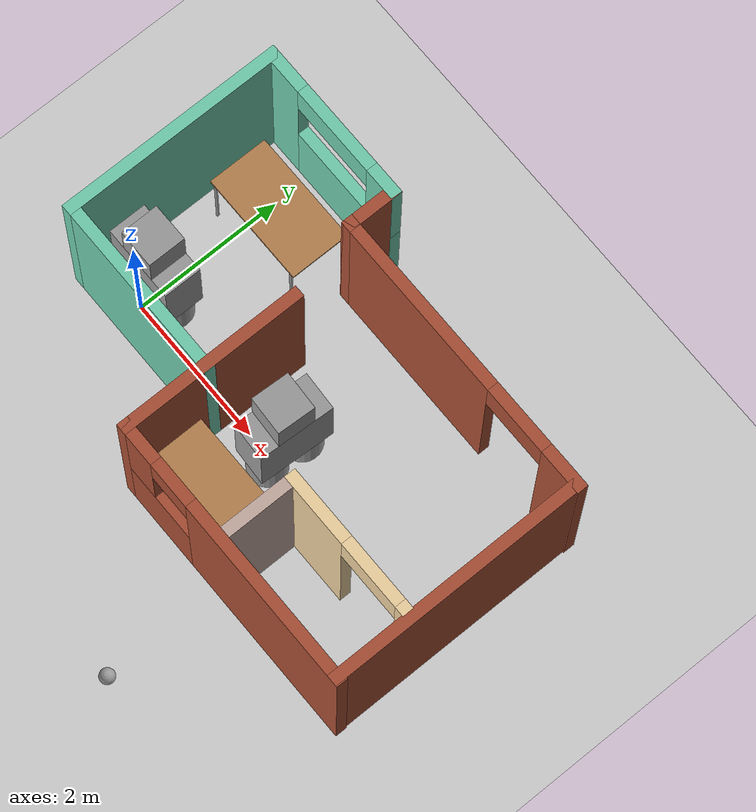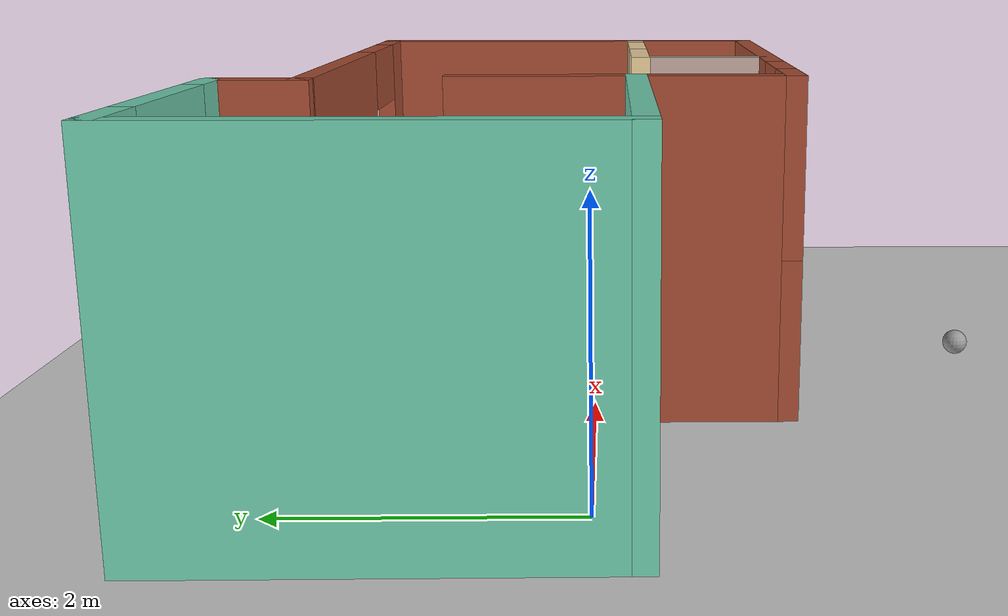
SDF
<sdf version="1.7">
 <world name="default">
  <plugin name="hello" filename="libhello.so"/>
  <light name="sun" type="directional">
   <pose>0 0 10 0 -0 0</pose>
   <diffuse>0.8 0.8 0.8 1</diffuse>
   <specular>0.2 0.2 0.2 1</specular>
   <attenuation>
    <range>1000</range>
    <constant>0.9</constant>
    <linear>0.01</linear>
    <quadratic>0.001</quadratic>
   </attenuation>
   <direction>-0.5 0.1 -0.9</direction>
   <spot><inner_angle>0</inner_angle><outer_angle>0</outer_angle><falloff>0</falloff></spot>
  </light>
  <model name="ground_plane">
   <static>1</static>
   <link name="link">
    <collision name="collision">
     <geometry><plane><normal>0 0 1</normal><size>100 100</size></plane></geometry>
     <surface>
      <contact><collide_bitmask>65535</collide_bitmask></contact>
      <friction><ode><mu>100</mu><mu2>50</mu2></ode></friction>
     </surface>
    </collision>
    <visual name="visual">
     <cast_shadows>0</cast_shadows>
     <geometry><plane><normal>0 0 1</normal><size>100 100</size></plane></geometry>
     <material>
      <script><uri>file://media/materials/scripts/gazebo.material</uri><name>Gazebo/Grey</name></script>
     </material>
    </visual>
   </link>
  </model>
  <gravity>0 0 -9.8</gravity>
  <magnetic_field>6e-06 2.3e-05 -4.2e-05</magnetic_field>
  <atmosphere type="adiabatic"/>
  <physics type="ode">
   <max_step_size>0.001</max_step_size>
   <real_time_factor>1</real_time_factor>
   <real_time_update_rate>1000</real_time_update_rate>
  </physics>
  <scene><ambient>0.4 0.4 0.4 1</ambient><background>0.7 0.7 0.7 1</background><shadows>1</shadows></scene>
  <spherical_coordinates>
   <surface_model>EARTH_WGS84</surface_model>
   <latitude_deg>0</latitude_deg>
   <longitude_deg>0</longitude_deg>
   <elevation>0</elevation>
   <heading_deg>0</heading_deg>
  </spherical_coordinates>
  <model name="HumanoidRobot">
   <link name="link_0">
    <inertial>
     <mass>1</mass>
     <inertia>
      <ixx>0.166667</ixx>
      <ixy>0</ixy>
      <ixz>0</ixz>
      <iyy>0.166667</iyy>
      <iyz>0</iyz>
      <izz>0.166667</izz>
     </inertia>
    </inertial>
    <pose>0 0 0.1875 0 -0 0</pose>
    <visual name="visual">
     <geometry><box><size>1 0.5 1</size></box></geometry>
     <material>
      <lighting>1</lighting>
      <script><uri>file://media/materials/scripts/gazebo.material</uri><name>Gazebo/Grey</name></script>
      <shader type="pixel"><normal_map>__default__</normal_map></shader>
      <ambient>0.3 0.3 0.3 1</ambient>
      <diffuse>0.7 0.7 0.7 1</diffuse>
      <specular>0.01 0.01 0.01 1</specular>
      <emissive>0 0 0 1</emissive>
     </material>
    </visual>
    <collision name="collision">
     <geometry><box><size>1 1 2</size></box></geometry>
     <surface>
      <friction>
       <ode><mu>1</mu><mu2>1</mu2><fdir1>0 0 0</fdir1><slip1>0</slip1><slip2>0</slip2></ode>
       <torsional>
        <coefficient>1</coefficient>
        <patch_radius>0</patch_radius>
        <surface_radius>0</surface_radius>
        <use_patch_radius>1</use_patch_radius>
        <ode><slip>0</slip></ode>
       </torsional>
      </friction>
      <bounce><restitution_coefficient>0</restitution_coefficient><threshold>1e+06</threshold></bounce>
      <contact>
       <collide_without_contact>0</collide_without_contact>
       <collide_without_contact_bitmask>1</collide_without_contact_bitmask>
       <collide_bitmask>1</collide_bitmask>
       <ode>
        <soft_cfm>0</soft_cfm>
        <soft_erp>0.2</soft_erp>
        <kp>1e+13</kp>
        <kd>1</kd>
        <max_vel>0.01</max_vel>
        <min_depth>0</min_depth>
       </ode>
       <bullet>
        <split_impulse>1</split_impulse>
        <split_impulse_penetration_threshold>-0.01</split_impulse_penetration_threshold>
        <soft_cfm>0</soft_cfm>
        <soft_erp>0.2</soft_erp>
        <kp>1e+13</kp>
        <kd>1</kd>
       </bullet>
      </contact>
     </surface>
    </collision>
   </link>
   <link name="link_1">
    <inertial>
     <mass>1</mass>
     <inertia><ixx>0.145833</ixx><ixy>0</ixy><ixz>0</ixz><iyy>0.145833</iyy><iyz>0</iyz><izz>0.125</izz></inertia>
    </inertial>
    <pose>-0.25 0 -0.5625 0 -0 0</pose>
    <visual name="visual">
     <geometry><cylinder><radius>0.25</radius><length>0.5</length></cylinder></geometry>
     <material>
      <lighting>1</lighting>
      <script><uri>file://media/materials/scripts/gazebo.material</uri><name>Gazebo/Grey</name></script>
      <shader type="pixel"><normal_map>__default__</normal_map></shader>
      <ambient>0.3 0.3 0.3 1</ambient>
      <diffuse>0.7 0.7 0.7 1</diffuse>
      <specular>0.01 0.01 0.01 1</specular>
      <emissive>0 0 0 1</emissive>
     </material>
    </visual>
    <collision name="collision">
     <geometry><cylinder><radius>0.25</radius><length>0.5</length></cylinder></geometry>
     <surface>
      <friction>
       <ode><mu>1</mu><mu2>1</mu2><fdir1>0 0 0</fdir1><slip1>0</slip1><slip2>0</slip2></ode>
       <torsional>
        <coefficient>1</coefficient>
        <patch_radius>0</patch_radius>
        <surface_radius>0</surface_radius>
        <use_patch_radius>1</use_patch_radius>
        <ode><slip>0</slip></ode>
       </torsional>
      </friction>
      <bounce><restitution_coefficient>0</restitution_coefficient><threshold>1e+06</threshold></bounce>
      <contact>
       <collide_without_contact>0</collide_without_contact>
       <collide_without_contact_bitmask>1</collide_without_contact_bitmask>
       <collide_bitmask>1</collide_bitmask>
       <ode>
        <soft_cfm>0</soft_cfm>
        <soft_erp>0.2</soft_erp>
        <kp>1e+13</kp>
        <kd>1</kd>
        <max_vel>0.01</max_vel>
        <min_depth>0</min_depth>
       </ode>
       <bullet>
        <split_impulse>1</split_impulse>
        <split_impulse_penetration_threshold>-0.01</split_impulse_penetration_threshold>
        <soft_cfm>0</soft_cfm>
        <soft_erp>0.2</soft_erp>
        <kp>1e+13</kp>
        <kd>1</kd>
       </bullet>
      </contact>
     </surface>
    </collision>
   </link>
   <link name="link_1_clone">
    <inertial>
     <mass>1</mass>
     <inertia><ixx>0.145833</ixx><ixy>0</ixy><ixz>0</ixz><iyy>0.145833</iyy><iyz>0</iyz><izz>0.125</izz></inertia>
    </inertial>
    <pose>0.25 0 -0.5625 0 -0 0</pose>
    <visual name="visual">
     <geometry><cylinder><radius>0.25</radius><length>0.5</length></cylinder></geometry>
     <material>
      <lighting>1</lighting>
      <script><uri>file://media/materials/scripts/gazebo.material</uri><name>Gazebo/Grey</name></script>
      <shader type="pixel"><normal_map>__default__</normal_map></shader>
      <ambient>0.3 0.3 0.3 1</ambient>
      <diffuse>0.7 0.7 0.7 1</diffuse>
      <specular>0.01 0.01 0.01 1</specular>
      <emissive>0 0 0 1</emissive>
     </material>
    </visual>
    <collision name="collision">
     <geometry><cylinder><radius>0.25</radius><length>0.5</length></cylinder></geometry>
     <surface>
      <friction>
       <ode><mu>1</mu><mu2>1</mu2><fdir1>0 0 0</fdir1><slip1>0</slip1><slip2>0</slip2></ode>
       <torsional>
        <coefficient>1</coefficient>
        <patch_radius>0</patch_radius>
        <surface_radius>0</surface_radius>
        <use_patch_radius>1</use_patch_radius>
        <ode><slip>0</slip></ode>
       </torsional>
      </friction>
      <bounce><restitution_coefficient>0</restitution_coefficient><threshold>1e+06</threshold></bounce>
      <contact>
       <collide_without_contact>0</collide_without_contact>
       <collide_without_contact_bitmask>1</collide_without_contact_bitmask>
       <collide_bitmask>1</collide_bitmask>
       <ode>
        <soft_cfm>0</soft_cfm>
        <soft_erp>0.2</soft_erp>
        <kp>1e+13</kp>
        <kd>1</kd>
        <max_vel>0.01</max_vel>
        <min_depth>0</min_depth>
       </ode>
       <bullet>
        <split_impulse>1</split_impulse>
        <split_impulse_penetration_threshold>-0.01</split_impulse_penetration_threshold>
        <soft_cfm>0</soft_cfm>
        <soft_erp>0.2</soft_erp>
        <kp>1e+13</kp>
        <kd>1</kd>
       </bullet>
      </contact>
     </surface>
    </collision>
   </link>
   <link name="link_2">
    <inertial>
     <mass>1</mass>
     <inertia>
      <ixx>0.166667</ixx>
      <ixy>0</ixy>
      <ixz>0</ixz>
      <iyy>0.166667</iyy>
      <iyz>0</iyz>
      <izz>0.166667</izz>
     </inertia>
    </inertial>
    <pose>0 0 0.9375 0 -0 0</pose>
    <visual name="visual">
     <geometry><box><size>0.5 0.5 0.5</size></box></geometry>
     <material>
      <lighting>1</lighting>
      <script><uri>file://media/materials/scripts/gazebo.material</uri><name>Gazebo/Grey</name></script>
      <shader type="pixel"><normal_map>__default__</normal_map></shader>
      <ambient>0.3 0.3 0.3 1</ambient>
      <diffuse>0.7 0.7 0.7 1</diffuse>
      <specular>0.01 0.01 0.01 1</specular>
      <emissive>0 0 0 1</emissive>
     </material>
    </visual>
    <collision name="collision">
     <geometry><box><size>0.5 0.5 0.5</size></box></geometry>
     <surface>
      <friction>
       <ode><mu>1</mu><mu2>1</mu2><fdir1>0 0 0</fdir1><slip1>0</slip1><slip2>0</slip2></ode>
       <torsional>
        <coefficient>1</coefficient>
        <patch_radius>0</patch_radius>
        <surface_radius>0</surface_radius>
        <use_patch_radius>1</use_patch_radius>
        <ode><slip>0</slip></ode>
       </torsional>
      </friction>
      <bounce><restitution_coefficient>0</restitution_coefficient><threshold>1e+06</threshold></bounce>
      <contact>
       <collide_without_contact>0</collide_without_contact>
       <collide_without_contact_bitmask>1</collide_without_contact_bitmask>
       <collide_bitmask>1</collide_bitmask>
       <ode>
        <soft_cfm>0</soft_cfm>
        <soft_erp>0.2</soft_erp>
        <kp>1e+13</kp>
        <kd>1</kd>
        <max_vel>0.01</max_vel>
        <min_depth>0</min_depth>
       </ode>
       <bullet>
        <split_impulse>1</split_impulse>
        <split_impulse_penetration_threshold>-0.01</split_impulse_penetration_threshold>
        <soft_cfm>0</soft_cfm>
        <soft_erp>0.2</soft_erp>
        <kp>1e+13</kp>
        <kd>1</kd>
       </bullet>
      </contact>
     </surface>
    </collision>
   </link>
   <static>0</static>
   <pose>-4e-06 0.276954 0.812502 -5e-06 -0 -0</pose>
  </model>
  <model name="Studio">
   <pose>2.29082 1.19445 0 0 -0 0</pose>
   <link name="Wall_10">
    <collision name="Wall_10_Collision">
     <geometry><box><size>2.5 0.15 2.5</size></box></geometry>
     <pose>0 0 1.25 0 -0 0</pose>
    </collision>
    <visual name="Wall_10_Visual">
     <pose>0 0 1.25 0 -0 0</pose>
     <geometry><box><size>2.5 0.15 2.5</size></box></geometry>
     <material>
      <script><uri>file://media/materials/scripts/gazebo.material</uri><name>Gazebo/Grey</name></script>
      <ambient>0.435294 0.796078 0.67451 1</ambient>
     </material>
     <meta><layer>0</layer></meta>
    </visual>
    <pose>-1.79999 -1.4925 0 0 -0 0</pose>
   </link>
   <link name="Wall_2">
    <collision name="Wall_2_Collision">
     <geometry><box><size>3 0.15 2.5</size></box></geometry>
     <pose>0 0 1.25 0 -0 0</pose>
    </collision>
    <visual name="Wall_2_Visual">
     <pose>0 0 1.25 0 -0 0</pose>
     <geometry><box><size>3 0.15 2.5</size></box></geometry>
     <material>
      <script><uri>file://media/materials/scripts/gazebo.material</uri><name>Gazebo/Grey</name></script>
      <ambient>0.435294 0.796078 0.67451 1</ambient>
     </material>
     <meta><layer>0</layer></meta>
    </visual>
    <pose>-2.97499 -0.0675 0 0 -0 1.5708</pose>
   </link>
   <link name="Wall_23">
    <pose>1.90201 -1.5615 0 0 -0 0</pose>
    <visual name="Wall_23_Visual_0">
     <pose>-0.516877 0 1.25 0 -0 0</pose>
     <geometry><box><size>0.966246 0.15 2.5</size></box></geometry>
     <material>
      <script><uri>file://media/materials/scripts/gazebo.material</uri><name>Gazebo/Grey</name></script>
      <ambient>0.921569 0.807843 0.615686 1</ambient>
     </material>
     <meta><layer>0</layer></meta>
    </visual>
    <collision name="Wall_23_Collision_0">
     <geometry><box><size>0.966246 0.15 2.5</size></box></geometry>
     <pose>-0.516877 0 1.25 0 -0 0</pose>
    </collision>
    <visual name="Wall_23_Visual_1">
     <pose>0.933123 0 1.25 0 -0 0</pose>
     <geometry><box><size>0.133754 0.15 2.5</size></box></geometry>
     <material>
      <script><uri>file://media/materials/scripts/gazebo.material</uri><name>Gazebo/Grey</name></script>
      <ambient>0.921569 0.807843 0.615686 1</ambient>
     </material>
     <meta><layer>0</layer></meta>
    </visual>
    <collision name="Wall_23_Collision_1">
     <geometry><box><size>0.133754 0.15 2.5</size></box></geometry>
     <pose>0.933123 0 1.25 0 -0 0</pose>
    </collision>
    <visual name="Wall_23_Visual_2">
     <pose>0.416246 0 2.25 0 -0 0</pose>
     <geometry><box><size>0.9 0.15 0.5</size></box></geometry>
     <material>
      <script><uri>file://media/materials/scripts/gazebo.material</uri><name>Gazebo/Grey</name></script>
      <ambient>0.921569 0.807843 0.615686 1</ambient>
     </material>
     <meta><layer>0</layer></meta>
    </visual>
    <collision name="Wall_23_Collision_2">
     <geometry><box><size>0.9 0.15 0.5</size></box></geometry>
     <pose>0.416246 0 2.25 0 -0 0</pose>
    </collision>
   </link>
   <link name="Wall_25">
    <collision name="Wall_25_Collision">
     <geometry><box><size>1.1 0.15 2.5</size></box></geometry>
     <pose>0 0 1.25 0 -0 0</pose>
    </collision>
    <visual name="Wall_25_Visual">
     <pose>0 0 1.25 0 -0 0</pose>
     <geometry><box><size>1.1 0.15 2.5</size></box></geometry>
     <material>
      <script><uri>file://media/materials/scripts/gazebo.material</uri><name>Gazebo/Grey</name></script>
      <ambient>0.760784 0.662745 0.627451 1</ambient>
     </material>
     <meta><layer>0</layer></meta>
    </visual>
    <pose>0.977008 -2.0365 0 0 -0 -1.5708</pose>
   </link>
   <link name="Wall_3">
    <pose>-1.92499 1.3575 0 0 -0 0</pose>
    <visual name="Wall_3_Visual_0">
     <pose>-0.820229 0 1.25 0 -0 0</pose>
     <geometry><box><size>0.609542 0.15 2.5</size></box></geometry>
     <material>
      <script><uri>file://media/materials/scripts/gazebo.material</uri><name>Gazebo/Grey</name></script>
      <ambient>0.435294 0.796078 0.67451 1</ambient>
     </material>
     <meta><layer>0</layer></meta>
    </visual>
    <collision name="Wall_3_Collision_0">
     <geometry><box><size>0.609542 0.15 2.5</size></box></geometry>
     <pose>-0.820229 0 1.25 0 -0 0</pose>
    </collision>
    <visual name="Wall_3_Visual_1">
     <pose>0.304771 0 0.6 0 -0 0</pose>
     <geometry><box><size>1.64046 0.15 1.2</size></box></geometry>
     <material>
      <script><uri>file://media/materials/scripts/gazebo.material</uri><name>Gazebo/Grey</name></script>
      <ambient>0.435294 0.796078 0.67451 1</ambient>
     </material>
     <meta><layer>0</layer></meta>
    </visual>
    <collision name="Wall_3_Collision_1">
     <geometry><box><size>1.64046 0.15 1.2</size></box></geometry>
     <pose>0.304771 0 0.6 0 -0 0</pose>
    </collision>
    <visual name="Wall_3_Visual_2">
     <pose>0.904771 0 1.85 0 -0 0</pose>
     <geometry><box><size>0.440458 0.15 1.3</size></box></geometry>
     <material>
      <script><uri>file://media/materials/scripts/gazebo.material</uri><name>Gazebo/Grey</name></script>
      <ambient>0.435294 0.796078 0.67451 1</ambient>
     </material>
     <meta><layer>0</layer></meta>
    </visual>
    <collision name="Wall_3_Collision_2">
     <geometry><box><size>0.440458 0.15 1.3</size></box></geometry>
     <pose>0.904771 0 1.85 0 -0 0</pose>
    </collision>
    <visual name="Wall_3_Visual_3">
     <pose>0.084542 0 2.25 0 -0 0</pose>
     <geometry><box><size>1.2 0.15 0.5</size></box></geometry>
     <material>
      <script><uri>file://media/materials/scripts/gazebo.material</uri><name>Gazebo/Grey</name></script>
      <ambient>0.435294 0.796078 0.67451 1</ambient>
     </material>
     <meta><layer>0</layer></meta>
    </visual>
    <collision name="Wall_3_Collision_3">
     <geometry><box><size>1.2 0.15 0.5</size></box></geometry>
     <pose>0.084542 0 2.25 0 -0 0</pose>
    </collision>
   </link>
   <link name="Wall_4">
    <collision name="Wall_4_Collision">
     <geometry><box><size>0.75 0.15 2.5</size></box></geometry>
     <pose>0 0 1.25 0 -0 0</pose>
    </collision>
    <visual name="Wall_4_Visual">
     <pose>0 0 1.25 0 -0 0</pose>
     <geometry><box><size>0.75 0.15 2.5</size></box></geometry>
     <material>
      <script><uri>file://media/materials/scripts/gazebo.material</uri><name>Gazebo/Bricks</name></script>
      <ambient>0.435294 0.796078 0.67451 1</ambient>
     </material>
     <meta><layer>0</layer></meta>
    </visual>
    <pose>-0.874992 1.0575 0 0 -0 -1.5708</pose>
   </link>
   <link name="Wall_5">
    <pose>1.05 0.7575 0 0 -0 0</pose>
    <visual name="Wall_5_Visual_0">
     <pose>-0.752392 0 1.25 0 -0 0</pose>
     <geometry><box><size>2.4952 0.15 2.5</size></box></geometry>
     <material>
      <script><uri>file://media/materials/scripts/gazebo.material</uri><name>Gazebo/Bricks</name></script>
      <ambient>1 1 1 1</ambient>
     </material>
     <meta><layer>0</layer></meta>
    </visual>
    <collision name="Wall_5_Collision_0">
     <geometry><box><size>2.4952 0.15 2.5</size></box></geometry>
     <pose>-0.752392 0 1.25 0 -0 0</pose>
    </collision>
    <visual name="Wall_5_Visual_1">
     <pose>1.6976 0 1.25 0 -0 0</pose>
     <geometry><box><size>0.604783 0.15 2.5</size></box></geometry>
     <material>
      <script><uri>file://media/materials/scripts/gazebo.material</uri><name>Gazebo/Bricks</name></script>
      <ambient>1 1 1 1</ambient>
     </material>
     <meta><layer>0</layer></meta>
    </visual>
    <collision name="Wall_5_Collision_1">
     <geometry><box><size>0.604783 0.15 2.5</size></box></geometry>
     <pose>1.6976 0 1.25 0 -0 0</pose>
    </collision>
    <visual name="Wall_5_Visual_2">
     <pose>0.945209 0 2.25 0 -0 0</pose>
     <geometry><box><size>0.9 0.15 0.5</size></box></geometry>
     <material>
      <script><uri>file://media/materials/scripts/gazebo.material</uri><name>Gazebo/Bricks</name></script>
      <ambient>1 1 1 1</ambient>
     </material>
     <meta><layer>0</layer></meta>
    </visual>
    <collision name="Wall_5_Collision_2">
     <geometry><box><size>0.9 0.15 0.5</size></box></geometry>
     <pose>0.945209 0 2.25 0 -0 0</pose>
    </collision>
   </link>
   <link name="Wall_6">
    <collision name="Wall_6_Collision">
     <geometry><box><size>3.5 0.15 2.5</size></box></geometry>
     <pose>0 0 1.25 0 -0 0</pose>
    </collision>
    <visual name="Wall_6_Visual">
     <pose>0 0 1.25 0 -0 0</pose>
     <geometry><box><size>3.5 0.15 2.5</size></box></geometry>
     <material>
      <script><uri>file://media/materials/scripts/gazebo.material</uri><name>Gazebo/Bricks</name></script>
      <ambient>1 1 1 1</ambient>
     </material>
     <meta><layer>0</layer></meta>
    </visual>
    <pose>2.95995 -0.9175 0 0 -0 -1.5708</pose>
   </link>
   <link name="Wall_7">
    <pose>1.175 -2.5925 0 0 -0 3.14159</pose>
    <visual name="Wall_7_Visual_0">
     <pose>-0.593945 0 1.25 0 -0 0</pose>
     <geometry><box><size>2.56209 0.15 2.5</size></box></geometry>
     <material>
      <script><uri>file://media/materials/scripts/gazebo.material</uri><name>Gazebo/Bricks</name></script>
      <ambient>1 1 1 1</ambient>
     </material>
     <meta><layer>0</layer></meta>
    </visual>
    <collision name="Wall_7_Collision_0">
     <geometry><box><size>2.56209 0.15 2.5</size></box></geometry>
     <pose>-0.593945 0 1.25 0 -0 0</pose>
    </collision>
    <visual name="Wall_7_Visual_1">
     <pose>1.28105 0 0.6 0 -0 0</pose>
     <geometry><box><size>1.18789 0.15 1.2</size></box></geometry>
     <material>
      <script><uri>file://media/materials/scripts/gazebo.material</uri><name>Gazebo/Bricks</name></script>
      <ambient>1 1 1 1</ambient>
     </material>
     <meta><layer>0</layer></meta>
    </visual>
    <collision name="Wall_7_Collision_1">
     <geometry><box><size>1.18789 0.15 1.2</size></box></geometry>
     <pose>1.28105 0 0.6 0 -0 0</pose>
    </collision>
    <visual name="Wall_7_Visual_2">
     <pose>1.58105 0 1.85 0 -0 0</pose>
     <geometry><box><size>0.587891 0.15 1.3</size></box></geometry>
     <material>
      <script><uri>file://media/materials/scripts/gazebo.material</uri><name>Gazebo/Bricks</name></script>
      <ambient>1 1 1 1</ambient>
     </material>
     <meta><layer>0</layer></meta>
    </visual>
    <collision name="Wall_7_Collision_2">
     <geometry><box><size>0.587891 0.15 1.3</size></box></geometry>
     <pose>1.58105 0 1.85 0 -0 0</pose>
    </collision>
    <visual name="Wall_7_Visual_3">
     <pose>0.987102 0 2.25 0 -0 0</pose>
     <geometry><box><size>0.6 0.15 0.5</size></box></geometry>
     <material>
      <script><uri>file://media/materials/scripts/gazebo.material</uri><name>Gazebo/Bricks</name></script>
      <ambient>1 1 1 1</ambient>
     </material>
     <meta><layer>0</layer></meta>
    </visual>
    <collision name="Wall_7_Collision_3">
     <geometry><box><size>0.6 0.15 0.5</size></box></geometry>
     <pose>0.987102 0 2.25 0 -0 0</pose>
    </collision>
   </link>
   <link name="Wall_8">
    <collision name="Wall_8_Collision">
     <geometry><box><size>2.5 0.15 2.5</size></box></geometry>
     <pose>0 0 1.25 0 -0 0</pose>
    </collision>
    <visual name="Wall_8_Visual">
     <pose>0 0 1.25 0 -0 0</pose>
     <geometry><box><size>2.5 0.15 2.5</size></box></geometry>
     <material>
      <script><uri>file://media/materials/scripts/gazebo.material</uri><name>Gazebo/Bricks</name></script>
      <ambient>1 1 1 1</ambient>
     </material>
     <meta><layer>0</layer></meta>
    </visual>
    <pose>-0.624992 -1.4175 0 0 -0 1.5708</pose>
   </link>
   <static>1</static>
  </model>
  <model name="HumanoidRobot_0">
   <link name="link_0">
    <inertial>
     <mass>1</mass>
     <inertia>
      <ixx>0.166667</ixx>
      <ixy>0</ixy>
      <ixz>0</ixz>
      <iyy>0.166667</iyy>
      <iyz>0</iyz>
      <izz>0.166667</izz>
     </inertia>
    </inertial>
    <pose>0 0 0.1875 0 -0 0</pose>
    <visual name="visual">
     <geometry><box><size>1 0.5 1</size></box></geometry>
     <material>
      <lighting>1</lighting>
      <script><uri>file://media/materials/scripts/gazebo.material</uri><name>Gazebo/Grey</name></script>
      <shader type="pixel"><normal_map>__default__</normal_map></shader>
      <ambient>0.3 0.3 0.3 1</ambient>
      <diffuse>0.7 0.7 0.7 1</diffuse>
      <specular>0.01 0.01 0.01 1</specular>
      <emissive>0 0 0 1</emissive>
     </material>
    </visual>
    <collision name="collision">
     <geometry><box><size>1 1 2</size></box></geometry>
     <surface>
      <friction>
       <ode><mu>1</mu><mu2>1</mu2><fdir1>0 0 0</fdir1><slip1>0</slip1><slip2>0</slip2></ode>
       <torsional>
        <coefficient>1</coefficient>
        <patch_radius>0</patch_radius>
        <surface_radius>0</surface_radius>
        <use_patch_radius>1</use_patch_radius>
        <ode><slip>0</slip></ode>
       </torsional>
      </friction>
      <bounce><restitution_coefficient>0</restitution_coefficient><threshold>1e+06</threshold></bounce>
      <contact>
       <collide_without_contact>0</collide_without_contact>
       <collide_without_contact_bitmask>1</collide_without_contact_bitmask>
       <collide_bitmask>1</collide_bitmask>
       <ode>
        <soft_cfm>0</soft_cfm>
        <soft_erp>0.2</soft_erp>
        <kp>1e+13</kp>
        <kd>1</kd>
        <max_vel>0.01</max_vel>
        <min_depth>0</min_depth>
       </ode>
       <bullet>
        <split_impulse>1</split_impulse>
        <split_impulse_penetration_threshold>-0.01</split_impulse_penetration_threshold>
        <soft_cfm>0</soft_cfm>
        <soft_erp>0.2</soft_erp>
        <kp>1e+13</kp>
        <kd>1</kd>
       </bullet>
      </contact>
     </surface>
    </collision>
   </link>
   <link name="link_1">
    <inertial>
     <mass>1</mass>
     <inertia><ixx>0.145833</ixx><ixy>0</ixy><ixz>0</ixz><iyy>0.145833</iyy><iyz>0</iyz><izz>0.125</izz></inertia>
    </inertial>
    <pose>-0.25 0 -0.5625 0 -0 0</pose>
    <visual name="visual">
     <geometry><cylinder><radius>0.25</radius><length>0.5</length></cylinder></geometry>
     <material>
      <lighting>1</lighting>
      <script><uri>file://media/materials/scripts/gazebo.material</uri><name>Gazebo/Grey</name></script>
      <shader type="pixel"><normal_map>__default__</normal_map></shader>
      <ambient>0.3 0.3 0.3 1</ambient>
      <diffuse>0.7 0.7 0.7 1</diffuse>
      <specular>0.01 0.01 0.01 1</specular>
      <emissive>0 0 0 1</emissive>
     </material>
    </visual>
    <collision name="collision">
     <geometry><cylinder><radius>0.25</radius><length>0.5</length></cylinder></geometry>
     <surface>
      <friction>
       <ode><mu>1</mu><mu2>1</mu2><fdir1>0 0 0</fdir1><slip1>0</slip1><slip2>0</slip2></ode>
       <torsional>
        <coefficient>1</coefficient>
        <patch_radius>0</patch_radius>
        <surface_radius>0</surface_radius>
        <use_patch_radius>1</use_patch_radius>
        <ode><slip>0</slip></ode>
       </torsional>
      </friction>
      <bounce><restitution_coefficient>0</restitution_coefficient><threshold>1e+06</threshold></bounce>
      <contact>
       <collide_without_contact>0</collide_without_contact>
       <collide_without_contact_bitmask>1</collide_without_contact_bitmask>
       <collide_bitmask>1</collide_bitmask>
       <ode>
        <soft_cfm>0</soft_cfm>
        <soft_erp>0.2</soft_erp>
        <kp>1e+13</kp>
        <kd>1</kd>
        <max_vel>0.01</max_vel>
        <min_depth>0</min_depth>
       </ode>
       <bullet>
        <split_impulse>1</split_impulse>
        <split_impulse_penetration_threshold>-0.01</split_impulse_penetration_threshold>
        <soft_cfm>0</soft_cfm>
        <soft_erp>0.2</soft_erp>
        <kp>1e+13</kp>
        <kd>1</kd>
       </bullet>
      </contact>
     </surface>
    </collision>
   </link>
   <link name="link_1_clone">
    <inertial>
     <mass>1</mass>
     <inertia><ixx>0.145833</ixx><ixy>0</ixy><ixz>0</ixz><iyy>0.145833</iyy><iyz>0</iyz><izz>0.125</izz></inertia>
    </inertial>
    <pose>0.25 0 -0.5625 0 -0 0</pose>
    <visual name="visual">
     <geometry><cylinder><radius>0.25</radius><length>0.5</length></cylinder></geometry>
     <material>
      <lighting>1</lighting>
      <script><uri>file://media/materials/scripts/gazebo.material</uri><name>Gazebo/Grey</name></script>
      <shader type="pixel"><normal_map>__default__</normal_map></shader>
      <ambient>0.3 0.3 0.3 1</ambient>
      <diffuse>0.7 0.7 0.7 1</diffuse>
      <specular>0.01 0.01 0.01 1</specular>
      <emissive>0 0 0 1</emissive>
     </material>
    </visual>
    <collision name="collision">
     <geometry><cylinder><radius>0.25</radius><length>0.5</length></cylinder></geometry>
     <surface>
      <friction>
       <ode><mu>1</mu><mu2>1</mu2><fdir1>0 0 0</fdir1><slip1>0</slip1><slip2>0</slip2></ode>
       <torsional>
        <coefficient>1</coefficient>
        <patch_radius>0</patch_radius>
        <surface_radius>0</surface_radius>
        <use_patch_radius>1</use_patch_radius>
        <ode><slip>0</slip></ode>
       </torsional>
      </friction>
      <bounce><restitution_coefficient>0</restitution_coefficient><threshold>1e+06</threshold></bounce>
      <contact>
       <collide_without_contact>0</collide_without_contact>
       <collide_without_contact_bitmask>1</collide_without_contact_bitmask>
       <collide_bitmask>1</collide_bitmask>
       <ode>
        <soft_cfm>0</soft_cfm>
        <soft_erp>0.2</soft_erp>
        <kp>1e+13</kp>
        <kd>1</kd>
        <max_vel>0.01</max_vel>
        <min_depth>0</min_depth>
       </ode>
       <bullet>
        <split_impulse>1</split_impulse>
        <split_impulse_penetration_threshold>-0.01</split_impulse_penetration_threshold>
        <soft_cfm>0</soft_cfm>
        <soft_erp>0.2</soft_erp>
        <kp>1e+13</kp>
        <kd>1</kd>
       </bullet>
      </contact>
     </surface>
    </collision>
   </link>
   <link name="link_2">
    <inertial>
     <mass>1</mass>
     <inertia>
      <ixx>0.166667</ixx>
      <ixy>0</ixy>
      <ixz>0</ixz>
      <iyy>0.166667</iyy>
      <iyz>0</iyz>
      <izz>0.166667</izz>
     </inertia>
    </inertial>
    <pose>0 0 0.9375 0 -0 0</pose>
    <visual name="visual">
     <geometry><box><size>0.5 0.5 0.5</size></box></geometry>
     <material>
      <lighting>1</lighting>
      <script><uri>file://media/materials/scripts/gazebo.material</uri><name>Gazebo/Grey</name></script>
      <shader type="pixel"><normal_map>__default__</normal_map></shader>
      <ambient>0.3 0.3 0.3 1</ambient>
      <diffuse>0.7 0.7 0.7 1</diffuse>
      <specular>0.01 0.01 0.01 1</specular>
      <emissive>0 0 0 1</emissive>
     </material>
    </visual>
    <collision name="collision">
     <geometry><box><size>0.5 0.5 0.5</size></box></geometry>
     <surface>
      <friction>
       <ode><mu>1</mu><mu2>1</mu2><fdir1>0 0 0</fdir1><slip1>0</slip1><slip2>0</slip2></ode>
       <torsional>
        <coefficient>1</coefficient>
        <patch_radius>0</patch_radius>
        <surface_radius>0</surface_radius>
        <use_patch_radius>1</use_patch_radius>
        <ode><slip>0</slip></ode>
       </torsional>
      </friction>
      <bounce><restitution_coefficient>0</restitution_coefficient><threshold>1e+06</threshold></bounce>
      <contact>
       <collide_without_contact>0</collide_without_contact>
       <collide_without_contact_bitmask>1</collide_without_contact_bitmask>
       <collide_bitmask>1</collide_bitmask>
       <ode>
        <soft_cfm>0</soft_cfm>
        <soft_erp>0.2</soft_erp>
        <kp>1e+13</kp>
        <kd>1</kd>
        <max_vel>0.01</max_vel>
        <min_depth>0</min_depth>
       </ode>
       <bullet>
        <split_impulse>1</split_impulse>
        <split_impulse_penetration_threshold>-0.01</split_impulse_penetration_threshold>
        <soft_cfm>0</soft_cfm>
        <soft_erp>0.2</soft_erp>
        <kp>1e+13</kp>
        <kd>1</kd>
       </bullet>
      </contact>
     </surface>
    </collision>
   </link>
   <static>0</static>
   <pose>2.42477 0.166864 0.812497 -3e-06 2e-06 -1.6197</pose>
  </model>
  <model name="table">
   <static>1</static>
   <link name="link">
    <collision name="surface">
     <pose>0 0 1 0 -0 0</pose>
     <geometry><box><size>1.5 0.8 0.03</size></box></geometry>
     <surface><friction><ode><mu>0.6</mu><mu2>0.6</mu2></ode></friction></surface>
    </collision>
    <visual name="visual1">
     <pose>0 0 1 0 -0 0</pose>
     <geometry><box><size>1.5 0.8 0.03</size></box></geometry>
     <material>
      <script><uri>file://media/materials/scripts/gazebo.material</uri><name>Gazebo/Wood</name></script>
     </material>
    </visual>
    <collision name="front_left_leg">
     <pose>0.68 0.38 0.5 0 -0 0</pose>
     <geometry><cylinder><radius>0.02</radius><length>1</length></cylinder></geometry>
    </collision>
    <visual name="front_left_leg">
     <pose>0.68 0.38 0.5 0 -0 0</pose>
     <geometry><cylinder><radius>0.02</radius><length>1</length></cylinder></geometry>
     <material>
      <script><uri>file://media/materials/scripts/gazebo.material</uri><name>Gazebo/Grey</name></script>
     </material>
    </visual>
    <collision name="front_right_leg">
     <pose>0.68 -0.38 0.5 0 -0 0</pose>
     <geometry><cylinder><radius>0.02</radius><length>1</length></cylinder></geometry>
    </collision>
    <visual name="front_right_leg">
     <pose>0.68 -0.38 0.5 0 -0 0</pose>
     <geometry><cylinder><radius>0.02</radius><length>1</length></cylinder></geometry>
     <material>
      <script><uri>file://media/materials/scripts/gazebo.material</uri><name>Gazebo/Grey</name></script>
     </material>
    </visual>
    <collision name="back_right_leg">
     <pose>-0.68 -0.38 0.5 0 -0 0</pose>
     <geometry><cylinder><radius>0.02</radius><length>1</length></cylinder></geometry>
    </collision>
    <visual name="back_right_leg">
     <pose>-0.68 -0.38 0.5 0 -0 0</pose>
     <geometry><cylinder><radius>0.02</radius><length>1</length></cylinder></geometry>
     <material>
      <script><uri>file://media/materials/scripts/gazebo.material</uri><name>Gazebo/Grey</name></script>
     </material>
    </visual>
    <collision name="back_left_leg">
     <pose>-0.68 0.38 0.5 0 -0 0</pose>
     <geometry><cylinder><radius>0.02</radius><length>1</length></cylinder></geometry>
    </collision>
    <visual name="back_left_leg">
     <pose>-0.68 0.38 0.5 0 -0 0</pose>
     <geometry><cylinder><radius>0.02</radius><length>1</length></cylinder></geometry>
     <material>
      <script><uri>file://media/materials/scripts/gazebo.material</uri><name>Gazebo/Grey</name></script>
     </material>
    </visual>
   </link>
   <pose>2.49861 -0.876541 0 0 -0 0.003951</pose>
  </model>
  <model name="table_0">
   <static>1</static>
   <link name="link">
    <collision name="surface">
     <pose>0 0 1 0 -0 0</pose>
     <geometry><box><size>1.5 0.8 0.03</size></box></geometry>
     <surface><friction><ode><mu>0.6</mu><mu2>0.6</mu2></ode></friction></surface>
    </collision>
    <visual name="visual1">
     <pose>0 0 1 0 -0 0</pose>
     <geometry><box><size>1.5 0.8 0.03</size></box></geometry>
     <material>
      <script><uri>file://media/materials/scripts/gazebo.material</uri><name>Gazebo/Wood</name></script>
     </material>
    </visual>
    <collision name="front_left_leg">
     <pose>0.68 0.38 0.5 0 -0 0</pose>
     <geometry><cylinder><radius>0.02</radius><length>1</length></cylinder></geometry>
    </collision>
    <visual name="front_left_leg">
     <pose>0.68 0.38 0.5 0 -0 0</pose>
     <geometry><cylinder><radius>0.02</radius><length>1</length></cylinder></geometry>
     <material>
      <script><uri>file://media/materials/scripts/gazebo.material</uri><name>Gazebo/Grey</name></script>
     </material>
    </visual>
    <collision name="front_right_leg">
     <pose>0.68 -0.38 0.5 0 -0 0</pose>
     <geometry><cylinder><radius>0.02</radius><length>1</length></cylinder></geometry>
    </collision>
    <visual name="front_right_leg">
     <pose>0.68 -0.38 0.5 0 -0 0</pose>
     <geometry><cylinder><radius>0.02</radius><length>1</length></cylinder></geometry>
     <material>
      <script><uri>file://media/materials/scripts/gazebo.material</uri><name>Gazebo/Grey</name></script>
     </material>
    </visual>
    <collision name="back_right_leg">
     <pose>-0.68 -0.38 0.5 0 -0 0</pose>
     <geometry><cylinder><radius>0.02</radius><length>1</length></cylinder></geometry>
    </collision>
    <visual name="back_right_leg">
     <pose>-0.68 -0.38 0.5 0 -0 0</pose>
     <geometry><cylinder><radius>0.02</radius><length>1</length></cylinder></geometry>
     <material>
      <script><uri>file://media/materials/scripts/gazebo.material</uri><name>Gazebo/Grey</name></script>
     </material>
    </visual>
    <collision name="back_left_leg">
     <pose>-0.68 0.38 0.5 0 -0 0</pose>
     <geometry><cylinder><radius>0.02</radius><length>1</length></cylinder></geometry>
    </collision>
    <visual name="back_left_leg">
     <pose>-0.68 0.38 0.5 0 -0 0</pose>
     <geometry><cylinder><radius>0.02</radius><length>1</length></cylinder></geometry>
     <material>
      <script><uri>file://media/materials/scripts/gazebo.material</uri><name>Gazebo/Grey</name></script>
     </material>
    </visual>
   </link>
   <pose>0.35334 1.77872 0 0 -0 0</pose>
  </model>
  <model name="my_ball">
   <link name="link_0">
    <inertial>
     <mass>1</mass>
     <inertia><ixx>0.1</ixx><ixy>0</ixy><ixz>0</ixz><iyy>0.1</iyy><iyz>0</iyz><izz>0.1</izz></inertia>
    </inertial>
    <visual name="visual">
     <geometry><sphere><radius>0.1</radius></sphere></geometry>
     <material>
      <lighting>1</lighting>
      <script><uri>file://media/materials/scripts/gazebo.material</uri><name>Gazebo/Grey</name></script>
      <shader type="pixel"><normal_map>__default__</normal_map></shader>
      <ambient>1 1 1 1</ambient>
      <diffuse>1 1 1 1</diffuse>
      <specular>1 1 1 1</specular>
      <emissive>1 1 1 1</emissive>
     </material>
    </visual>
    <collision name="collision">
     <geometry><sphere><radius>0.1</radius></sphere></geometry>
     <surface>
      <friction>
       <ode><mu>1</mu><mu2>1</mu2><fdir1>0 0 0</fdir1><slip1>0</slip1><slip2>0</slip2></ode>
       <torsional>
        <coefficient>1</coefficient>
        <patch_radius>0</patch_radius>
        <surface_radius>0</surface_radius>
        <use_patch_radius>1</use_patch_radius>
        <ode><slip>0</slip></ode>
       </torsional>
      </friction>
      <bounce><restitution_coefficient>0</restitution_coefficient><threshold>1e+06</threshold></bounce>
      <contact>
       <collide_without_contact>0</collide_without_contact>
       <collide_without_contact_bitmask>1</collide_without_contact_bitmask>
       <collide_bitmask>1</collide_bitmask>
       <ode>
        <soft_cfm>0</soft_cfm>
        <soft_erp>0.2</soft_erp>
        <kp>1e+13</kp>
        <kd>1</kd>
        <max_vel>0.01</max_vel>
        <min_depth>0</min_depth>
       </ode>
       <bullet>
        <split_impulse>1</split_impulse>
        <split_impulse_penetration_threshold>-0.01</split_impulse_penetration_threshold>
        <soft_cfm>0</soft_cfm>
        <soft_erp>0.2</soft_erp>
        <kp>1e+13</kp>
        <kd>1</kd>
       </bullet>
      </contact>
     </surface>
    </collision>
   </link>
   <static>0</static>
   <pose>3.19564 -3.03569 0.1 0 -0 0</pose>
  </model>
 </world>
</sdf>
